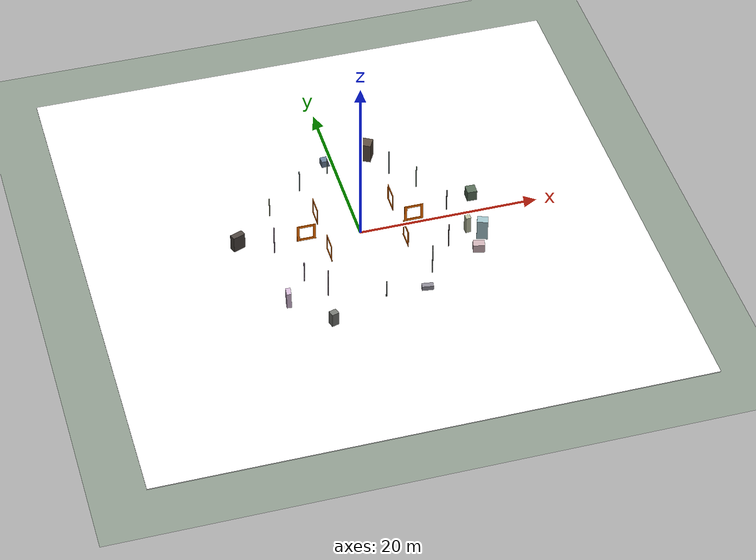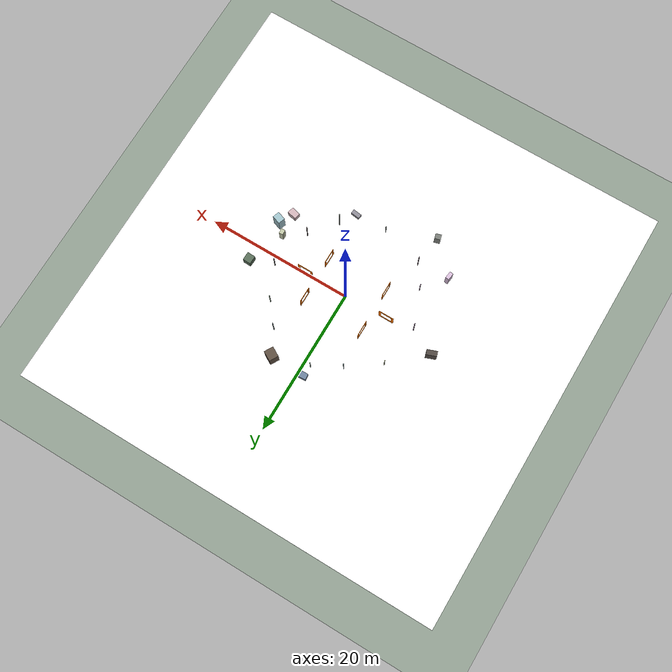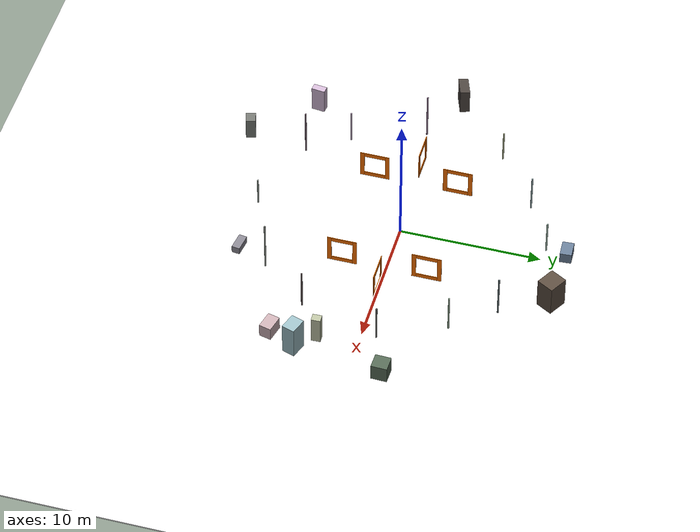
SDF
<sdf version="1.9">
 <world name="figure8">
  <plugin filename="gz-sim-physics-system" name="gz::sim::systems::Physics"/>
  <plugin filename="gz-sim-user-commands-system" name="gz::sim::systems::UserCommands"/>
  <plugin filename="gz-sim-scene-broadcaster-system" name="gz::sim::systems::SceneBroadcaster"/>
  <plugin filename="gz-sim-contact-system" name="gz::sim::systems::Contact"/>
  <plugin filename="gz-sim-imu-system" name="gz::sim::systems::Imu"/>
  <plugin filename="gz-sim-air-pressure-system" name="gz::sim::systems::AirPressure"/>
  <plugin filename="gz-sim-magnetometer-system" name="gz::sim::systems::Magnetometer"/>
  <plugin filename="gz-sim-navsat-system" name="gz::sim::systems::NavSat"/>
  <plugin filename="gz-sim-sensors-system" name="gz::sim::systems::Sensors">
   <render_engine>ogre2</render_engine>
  </plugin>
  <physics type="ode">
   <max_step_size>0.004</max_step_size>
   <real_time_factor>1.0</real_time_factor>
   <real_time_update_rate>250</real_time_update_rate>
  </physics>
  <gravity>0 0 -9.8</gravity>
  <magnetic_field>6e-06 2.3e-05 -4.2e-05</magnetic_field>
  <atmosphere type="adiabatic"/>
  <scene>
   <grid>false</grid>
   <ambient>0.4 0.4 0.4 1</ambient>
   <background>0.7 0.7 0.7 1</background>
   <shadows>true</shadows>
  </scene>
  <spherical_coordinates>
   <surface_model>EARTH_WGS84</surface_model>
   <world_frame_orientation>ENU</world_frame_orientation>
   <latitude_deg>47.397971057728974</latitude_deg>
   <longitude_deg>8.546163739800146</longitude_deg>
   <elevation>488</elevation>
  </spherical_coordinates>
  <light name="sun" type="directional">
   <pose>0 0 500 0 0 0</pose>
   <intensity>1</intensity>
   <direction>0.001 0.625 -0.78</direction>
   <diffuse>0.904 0.904 0.904 1</diffuse>
   <specular>0.271 0.271 0.271 1</specular>
   <attenuation><range>2000</range><linear>0</linear><constant>1</constant><quadratic>0</quadratic></attenuation>
  </light>
  <model name="ground_plane">
   <static>true</static>
   <pose>0 0 -0.02 0 0 0</pose>
   <link name="link">
    <collision name="collision">
     <geometry><plane><normal>0 0 1</normal><size>1 1</size></plane></geometry>
    </collision>
    <visual name="visual">
     <geometry><plane><normal>0 0 1</normal><size>200 200</size></plane></geometry>
     <material>
      <ambient>0.55 0.6 0.55 1</ambient>
      <diffuse>0.55 0.6 0.55 1</diffuse>
      <specular>0.2 0.2 0.2 1</specular>
     </material>
    </visual>
   </link>
  </model>
  <model name="pole_0">
   <static>true</static>
   <pose>10.043 1.041 1.421 0 0 0</pose>
   <link name="link">
    <visual name="visual">
     <geometry><cylinder><radius>0.06</radius><length>2.841</length></cylinder></geometry>
     <material>
      <ambient>0.38 0.38 0.37 1</ambient>
      <diffuse>0.38 0.38 0.37 1</diffuse>
      <specular>0.1 0.1 0.1 1</specular>
     </material>
    </visual>
    <collision name="collision">
     <geometry><cylinder><radius>0.06</radius><length>2.841</length></cylinder></geometry>
    </collision>
   </link>
  </model>
  <model name="pole_1">
   <static>true</static>
   <pose>7.911 5.514 1.477 0 0 0</pose>
   <link name="link">
    <visual name="visual">
     <geometry><cylinder><radius>0.06</radius><length>2.953</length></cylinder></geometry>
     <material>
      <ambient>0.54 0.63 0.54 1</ambient>
      <diffuse>0.54 0.63 0.54 1</diffuse>
      <specular>0.1 0.1 0.1 1</specular>
     </material>
    </visual>
    <collision name="collision">
     <geometry><cylinder><radius>0.06</radius><length>2.953</length></cylinder></geometry>
    </collision>
   </link>
  </model>
  <model name="pole_2">
   <static>true</static>
   <pose>5.609 8.394 1.618 0 0 0</pose>
   <link name="link">
    <visual name="visual">
     <geometry><cylinder><radius>0.06</radius><length>3.237</length></cylinder></geometry>
     <material>
      <ambient>0.38 0.44 0.45 1</ambient>
      <diffuse>0.38 0.44 0.45 1</diffuse>
      <specular>0.1 0.1 0.1 1</specular>
     </material>
    </visual>
    <collision name="collision">
     <geometry><cylinder><radius>0.06</radius><length>3.237</length></cylinder></geometry>
    </collision>
   </link>
  </model>
  <model name="pole_3">
   <static>true</static>
   <pose>-0.952 10.197 1.310 0 0 0</pose>
   <link name="link">
    <visual name="visual">
     <geometry><cylinder><radius>0.06</radius><length>2.620</length></cylinder></geometry>
     <material>
      <ambient>0.61 0.71 0.66 1</ambient>
      <diffuse>0.61 0.71 0.66 1</diffuse>
      <specular>0.1 0.1 0.1 1</specular>
     </material>
    </visual>
    <collision name="collision">
     <geometry><cylinder><radius>0.06</radius><length>2.620</length></cylinder></geometry>
    </collision>
   </link>
  </model>
  <model name="pole_4">
   <static>true</static>
   <pose>-4.652 8.215 1.434 0 0 0</pose>
   <link name="link">
    <visual name="visual">
     <geometry><cylinder><radius>0.06</radius><length>2.868</length></cylinder></geometry>
     <material>
      <ambient>0.56 0.65 0.66 1</ambient>
      <diffuse>0.56 0.65 0.66 1</diffuse>
      <specular>0.1 0.1 0.1 1</specular>
     </material>
    </visual>
    <collision name="collision">
     <geometry><cylinder><radius>0.06</radius><length>2.868</length></cylinder></geometry>
    </collision>
   </link>
  </model>
  <model name="pole_5">
   <static>true</static>
   <pose>-8.802 5.163 1.260 0 0 0</pose>
   <link name="link">
    <visual name="visual">
     <geometry><cylinder><radius>0.06</radius><length>2.521</length></cylinder></geometry>
     <material>
      <ambient>0.65 0.67 0.53 1</ambient>
      <diffuse>0.65 0.67 0.53 1</diffuse>
      <specular>0.1 0.1 0.1 1</specular>
     </material>
    </visual>
    <collision name="collision">
     <geometry><cylinder><radius>0.06</radius><length>2.521</length></cylinder></geometry>
    </collision>
   </link>
  </model>
  <model name="pole_6">
   <static>true</static>
   <pose>-9.717 -0.641 1.825 0 0 0</pose>
   <link name="link">
    <visual name="visual">
     <geometry><cylinder><radius>0.06</radius><length>3.650</length></cylinder></geometry>
     <material>
      <ambient>0.58 0.47 0.58 1</ambient>
      <diffuse>0.58 0.47 0.58 1</diffuse>
      <specular>0.1 0.1 0.1 1</specular>
     </material>
    </visual>
    <collision name="collision">
     <geometry><cylinder><radius>0.06</radius><length>3.650</length></cylinder></geometry>
    </collision>
   </link>
  </model>
  <model name="pole_7">
   <static>true</static>
   <pose>-7.722 -5.676 1.325 0 0 0</pose>
   <link name="link">
    <visual name="visual">
     <geometry><cylinder><radius>0.06</radius><length>2.650</length></cylinder></geometry>
     <material>
      <ambient>0.69 0.60 0.70 1</ambient>
      <diffuse>0.69 0.60 0.70 1</diffuse>
      <specular>0.1 0.1 0.1 1</specular>
     </material>
    </visual>
    <collision name="collision">
     <geometry><cylinder><radius>0.06</radius><length>2.650</length></cylinder></geometry>
    </collision>
   </link>
  </model>
  <model name="pole_8">
   <static>true</static>
   <pose>-5.837 -8.495 1.803 0 0 0</pose>
   <link name="link">
    <visual name="visual">
     <geometry><cylinder><radius>0.06</radius><length>3.606</length></cylinder></geometry>
     <material>
      <ambient>0.47 0.39 0.44 1</ambient>
      <diffuse>0.47 0.39 0.44 1</diffuse>
      <specular>0.1 0.1 0.1 1</specular>
     </material>
    </visual>
    <collision name="collision">
     <geometry><cylinder><radius>0.06</radius><length>3.606</length></cylinder></geometry>
    </collision>
   </link>
  </model>
  <model name="pole_9">
   <static>true</static>
   <pose>0.024 -10.272 1.109 0 0 0</pose>
   <link name="link">
    <visual name="visual">
     <geometry><cylinder><radius>0.06</radius><length>2.218</length></cylinder></geometry>
     <material>
      <ambient>0.53 0.57 0.54 1</ambient>
      <diffuse>0.53 0.57 0.54 1</diffuse>
      <specular>0.1 0.1 0.1 1</specular>
     </material>
    </visual>
    <collision name="collision">
     <geometry><cylinder><radius>0.06</radius><length>2.218</length></cylinder></geometry>
    </collision>
   </link>
  </model>
  <model name="pole_10">
   <static>true</static>
   <pose>5.724 -8.053 1.964 0 0 0</pose>
   <link name="link">
    <visual name="visual">
     <geometry><cylinder><radius>0.06</radius><length>3.928</length></cylinder></geometry>
     <material>
      <ambient>0.55 0.57 0.54 1</ambient>
      <diffuse>0.55 0.57 0.54 1</diffuse>
      <specular>0.1 0.1 0.1 1</specular>
     </material>
    </visual>
    <collision name="collision">
     <geometry><cylinder><radius>0.06</radius><length>3.928</length></cylinder></geometry>
    </collision>
   </link>
  </model>
  <model name="pole_11">
   <static>true</static>
   <pose>8.558 -4.617 1.576 0 0 0</pose>
   <link name="link">
    <visual name="visual">
     <geometry><cylinder><radius>0.06</radius><length>3.151</length></cylinder></geometry>
     <material>
      <ambient>0.40 0.35 0.35 1</ambient>
      <diffuse>0.40 0.35 0.35 1</diffuse>
      <specular>0.1 0.1 0.1 1</specular>
     </material>
    </visual>
    <collision name="collision">
     <geometry><cylinder><radius>0.06</radius><length>3.151</length></cylinder></geometry>
    </collision>
   </link>
  </model>
  <model name="box_0">
   <static>true</static>
   <pose>-10.225 -8.763 1.008 0 0 1.450</pose>
   <link name="link">
    <visual name="visual">
     <geometry><box><size>0.972 0.508 2.015</size></box></geometry>
     <material>
      <ambient>0.83 0.73 0.84 1</ambient>
      <diffuse>0.83 0.73 0.84 1</diffuse>
      <specular>0.1 0.1 0.1 1</specular>
     </material>
    </visual>
    <collision name="collision"><geometry><box><size>0.972 0.508 2.015</size></box></geometry></collision>
   </link>
  </model>
  <model name="box_1">
   <static>true</static>
   <pose>11.513 -6.042 0.526 0 0 1.334</pose>
   <link name="link">
    <visual name="visual">
     <geometry><box><size>0.870 1.246 1.051</size></box></geometry>
     <material>
      <ambient>0.80 0.69 0.71 1</ambient>
      <diffuse>0.80 0.69 0.71 1</diffuse>
      <specular>0.1 0.1 0.1 1</specular>
     </material>
    </visual>
    <collision name="collision"><geometry><box><size>0.870 1.246 1.051</size></box></geometry></collision>
   </link>
  </model>
  <model name="box_2">
   <static>true</static>
   <pose>12.508 -4.085 1.246 0 0 1.246</pose>
   <link name="link">
    <visual name="visual">
     <geometry><box><size>0.941 1.192 2.493</size></box></geometry>
     <material>
      <ambient>0.62 0.75 0.78 1</ambient>
      <diffuse>0.62 0.75 0.78 1</diffuse>
      <specular>0.1 0.1 0.1 1</specular>
     </material>
    </visual>
    <collision name="collision"><geometry><box><size>0.941 1.192 2.493</size></box></geometry></collision>
   </link>
  </model>
  <model name="box_3">
   <static>true</static>
   <pose>-13.312 1.137 0.981 0 0 0.346</pose>
   <link name="link">
    <visual name="visual">
     <geometry><box><size>1.414 0.692 1.963</size></box></geometry>
     <material>
      <ambient>0.30 0.27 0.25 1</ambient>
      <diffuse>0.30 0.27 0.25 1</diffuse>
      <specular>0.1 0.1 0.1 1</specular>
     </material>
    </visual>
    <collision name="collision"><geometry><box><size>1.414 0.692 1.963</size></box></geometry></collision>
   </link>
  </model>
  <model name="box_4">
   <static>true</static>
   <pose>4.524 -10.291 0.295 0 0 1.429</pose>
   <link name="link">
    <visual name="visual">
     <geometry><box><size>0.576 1.237 0.590</size></box></geometry>
     <material>
      <ambient>0.55 0.54 0.58 1</ambient>
      <diffuse>0.55 0.54 0.58 1</diffuse>
      <specular>0.1 0.1 0.1 1</specular>
     </material>
    </visual>
    <collision name="collision"><geometry><box><size>0.576 1.237 0.590</size></box></geometry></collision>
   </link>
  </model>
  <model name="box_5">
   <static>true</static>
   <pose>13.192 2.234 0.641 0 0 1.539</pose>
   <link name="link">
    <visual name="visual">
     <geometry><box><size>1.128 1.091 1.282</size></box></geometry>
     <material>
      <ambient>0.34 0.42 0.34 1</ambient>
      <diffuse>0.34 0.42 0.34 1</diffuse>
      <specular>0.1 0.1 0.1 1</specular>
     </material>
    </visual>
    <collision name="collision"><geometry><box><size>1.128 1.091 1.282</size></box></geometry></collision>
   </link>
  </model>
  <model name="box_6">
   <static>true</static>
   <pose>11.234 -2.807 1.051 0 0 0.036</pose>
   <link name="link">
    <visual name="visual">
     <geometry><box><size>0.549 0.653 2.101</size></box></geometry>
     <material>
      <ambient>0.74 0.76 0.64 1</ambient>
      <diffuse>0.74 0.76 0.64 1</diffuse>
      <specular>0.1 0.1 0.1 1</specular>
     </material>
    </visual>
    <collision name="collision"><geometry><box><size>0.549 0.653 2.101</size></box></geometry></collision>
   </link>
  </model>
  <model name="box_7">
   <static>true</static>
   <pose>-0.730 11.700 0.430 0 0 0.062</pose>
   <link name="link">
    <visual name="visual">
     <geometry><box><size>1.176 0.820 0.861</size></box></geometry>
     <material>
      <ambient>0.42 0.50 0.60 1</ambient>
      <diffuse>0.42 0.50 0.60 1</diffuse>
      <specular>0.1 0.1 0.1 1</specular>
     </material>
    </visual>
    <collision name="collision"><geometry><box><size>1.176 0.820 0.861</size></box></geometry></collision>
   </link>
  </model>
  <model name="box_8">
   <static>true</static>
   <pose>3.840 11.657 1.168 0 0 1.056</pose>
   <link name="link">
    <visual name="visual">
     <geometry><box><size>1.278 1.406 2.337</size></box></geometry>
     <material>
      <ambient>0.36 0.30 0.25 1</ambient>
      <diffuse>0.36 0.30 0.25 1</diffuse>
      <specular>0.1 0.1 0.1 1</specular>
     </material>
    </visual>
    <collision name="collision"><geometry><box><size>1.278 1.406 2.337</size></box></geometry></collision>
   </link>
  </model>
  <model name="box_9">
   <static>true</static>
   <pose>-6.360 -12.719 0.847 0 0 0.274</pose>
   <link name="link">
    <visual name="visual">
     <geometry><box><size>0.811 0.701 1.694</size></box></geometry>
     <material>
      <ambient>0.46 0.47 0.45 1</ambient>
      <diffuse>0.46 0.47 0.45 1</diffuse>
      <specular>0.1 0.1 0.1 1</specular>
     </material>
    </visual>
    <collision name="collision"><geometry><box><size>0.811 0.701 1.694</size></box></geometry></collision>
   </link>
  </model>
  <include><uri>model://adr_ground</uri><name>adr_ground</name></include>
  <include>
   <uri>model://adr_gate_figure8</uri>
   <name>gate_1</name>
   <pose>-4.242641 -3.0 1.5 0 0 0.000000</pose>
  </include>
  <include>
   <uri>model://adr_gate_figure8</uri>
   <name>gate_2</name>
   <pose>4.242641 3.0 1.5 0 0 0.000000</pose>
  </include>
  <include>
   <uri>model://adr_gate_figure8</uri>
   <name>gate_3</name>
   <pose>6.0 0.0 1.5 0 0 -1.570796</pose>
  </include>
  <include>
   <uri>model://adr_gate_figure8</uri>
   <name>gate_4</name>
   <pose>4.242641 -3.0 1.5 0 0 3.141593</pose>
  </include>
  <include>
   <uri>model://adr_gate_figure8</uri>
   <name>gate_5</name>
   <pose>-4.242641 3.0 1.5 0 0 3.141593</pose>
  </include>
  <include>
   <uri>model://adr_gate_figure8</uri>
   <name>gate_6</name>
   <pose>-6.0 0.0 1.5 0 0 -1.570796</pose>
  </include>
 </world>
</sdf>

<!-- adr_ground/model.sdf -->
<!-- 자동 생성: adr_sim/scripts/gen_world.py (입력: adr_sim/config/scene.yaml). 직접 수정하지 말 것.
     VIO 특징점용 텍스처 바닥. 60 x 60 m, 윗면 z=0. -->
<sdf version="1.9">
  <model name="adr_ground">
    <static>true</static>
    <pose>0 0 -0.05 0 0 0</pose>
    <link name="link">
      <visual name="visual">
        <geometry><box><size>60 60 0.1</size></box></geometry>
        <material>
          <ambient>0.8 0.8 0.8 1</ambient>
          <diffuse>1 1 1 1</diffuse>
          <specular>0.1 0.1 0.1 1</specular>
          <pbr>
            <metal>
              <albedo_map>model://adr_ground/materials/textures/ground.png</albedo_map>
              <metalness>0.0</metalness>
              <roughness>0.9</roughness>
            </metal>
          </pbr>
        </material>
      </visual>
      <collision name="collision">
        <geometry><box><size>60 60 0.1</size></box></geometry>
        <surface><friction><ode/></friction><contact/></surface>
      </collision>
    </link>
  </model>
</sdf>

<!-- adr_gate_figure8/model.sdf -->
<!-- 자동 생성: adr_sim/scripts/gen_world.py (입력: 맵 yaml 의 gate:). 직접 수정하지 말 것.
     정사각 레이싱 게이트. 내부 1.5 m, 외부 2.1 m (프레임 폭 0.3 m), 두께 0.05 m.
     원점 = 개구부 중심, +x = 통과 방향(법선). static 이라 공중에 고정된다(다리 없음). -->
<sdf version="1.9">
  <model name="adr_gate_figure8">
    <static>true</static>
    <link name="left">
      <pose>0 0.9 0 0 0 0</pose>
      <visual name="left_visual">
        <geometry><box><size>0.05 0.3 2.1</size></box></geometry>
        <material>
          <ambient>1.0 0.45 0.0 1</ambient>
          <diffuse>1.0 0.45 0.0 1</diffuse>
          <specular>0.2 0.2 0.2 1</specular>
        </material>
      </visual>
      <collision name="left_collision">
        <geometry><box><size>0.05 0.3 2.1</size></box></geometry>
      </collision>
    </link>
    <link name="right">
      <pose>0 -0.9 0 0 0 0</pose>
      <visual name="right_visual">
        <geometry><box><size>0.05 0.3 2.1</size></box></geometry>
        <material>
          <ambient>1.0 0.45 0.0 1</ambient>
          <diffuse>1.0 0.45 0.0 1</diffuse>
          <specular>0.2 0.2 0.2 1</specular>
        </material>
      </visual>
      <collision name="right_collision">
        <geometry><box><size>0.05 0.3 2.1</size></box></geometry>
      </collision>
    </link>
    <link name="top">
      <pose>0 0 0.9 0 0 0</pose>
      <visual name="top_visual">
        <geometry><box><size>0.05 1.5 0.3</size></box></geometry>
        <material>
          <ambient>1.0 0.45 0.0 1</ambient>
          <diffuse>1.0 0.45 0.0 1</diffuse>
          <specular>0.2 0.2 0.2 1</specular>
        </material>
      </visual>
      <collision name="top_collision">
        <geometry><box><size>0.05 1.5 0.3</size></box></geometry>
      </collision>
    </link>
    <link name="bottom">
      <pose>0 0 -0.9 0 0 0</pose>
      <visual name="bottom_visual">
        <geometry><box><size>0.05 1.5 0.3</size></box></geometry>
        <material>
          <ambient>1.0 0.45 0.0 1</ambient>
          <diffuse>1.0 0.45 0.0 1</diffuse>
          <specular>0.2 0.2 0.2 1</specular>
        </material>
      </visual>
      <collision name="bottom_collision">
        <geometry><box><size>0.05 1.5 0.3</size></box></geometry>
      </collision>
    </link>
  </model>
</sdf>
